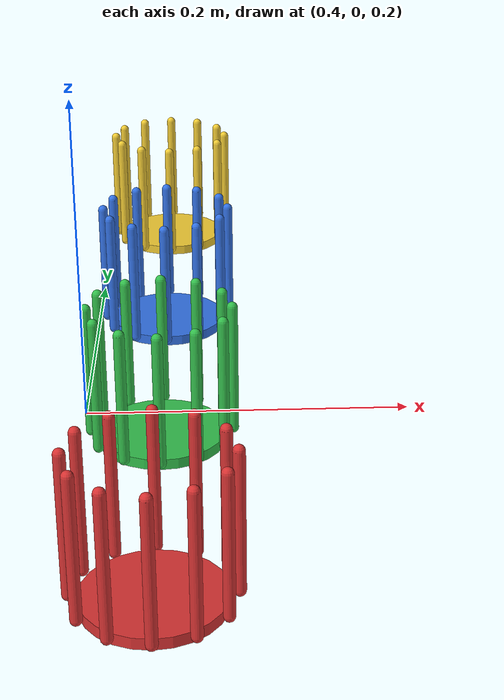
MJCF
<mujoco model="simple_stack_cups">
  <default>
    <default class="stack_cup_collision">
      <geom
        contype="1"
        conaffinity="1"
        condim="4"
        friction="1.5 0.05 0.005"
        solref="0.005 1"
        solimp="0.95 0.995 0.0005 0.5 2"
        margin="0.001"
        gap="0"/>
    </default>
  </default>

  <asset>
    <material name="stack_cup_red" rgba="0.85 0.20 0.20 1"/>
    <material name="stack_cup_green" rgba="0.20 0.75 0.30 1"/>
    <material name="stack_cup_blue" rgba="0.20 0.45 0.90 1"/>
    <material name="stack_cup_yellow" rgba="0.95 0.80 0.20 1"/>
  </asset>

  <worldbody>
    <body name="cup1" pos="0.45 -0.24 0.225">
      <freejoint name="cup1_free"/>
      <inertial pos="0 0 0.04" mass="0.08" diaginertia="0.00008 0.00008 0.00008"/>
      <geom name="cup1_bottom" type="cylinder" pos="0 0 0.003" size="0.036 0.003" material="stack_cup_red" class="stack_cup_collision"/>
      <geom name="cup1_wall_00" type="capsule" pos="0.04000 0.00000 0.043" size="0.003 0.037" material="stack_cup_red" class="stack_cup_collision"/>
      <geom name="cup1_wall_01" type="capsule" pos="0.03464 0.02000 0.043" size="0.003 0.037" material="stack_cup_red" class="stack_cup_collision"/>
      <geom name="cup1_wall_02" type="capsule" pos="0.02000 0.03464 0.043" size="0.003 0.037" material="stack_cup_red" class="stack_cup_collision"/>
      <geom name="cup1_wall_03" type="capsule" pos="0.00000 0.04000 0.043" size="0.003 0.037" material="stack_cup_red" class="stack_cup_collision"/>
      <geom name="cup1_wall_04" type="capsule" pos="-0.02000 0.03464 0.043" size="0.003 0.037" material="stack_cup_red" class="stack_cup_collision"/>
      <geom name="cup1_wall_05" type="capsule" pos="-0.03464 0.02000 0.043" size="0.003 0.037" material="stack_cup_red" class="stack_cup_collision"/>
      <geom name="cup1_wall_06" type="capsule" pos="-0.04000 0.00000 0.043" size="0.003 0.037" material="stack_cup_red" class="stack_cup_collision"/>
      <geom name="cup1_wall_07" type="capsule" pos="-0.03464 -0.02000 0.043" size="0.003 0.037" material="stack_cup_red" class="stack_cup_collision"/>
      <geom name="cup1_wall_08" type="capsule" pos="-0.02000 -0.03464 0.043" size="0.003 0.037" material="stack_cup_red" class="stack_cup_collision"/>
      <geom name="cup1_wall_09" type="capsule" pos="0.00000 -0.04000 0.043" size="0.003 0.037" material="stack_cup_red" class="stack_cup_collision"/>
      <geom name="cup1_wall_10" type="capsule" pos="0.02000 -0.03464 0.043" size="0.003 0.037" material="stack_cup_red" class="stack_cup_collision"/>
      <geom name="cup1_wall_11" type="capsule" pos="0.03464 -0.02000 0.043" size="0.003 0.037" material="stack_cup_red" class="stack_cup_collision"/>
    </body>

    <body name="cup2" pos="0.45 -0.08 0.225">
      <freejoint name="cup2_free"/>
      <inertial pos="0 0 0.04" mass="0.08" diaginertia="0.00008 0.00008 0.00008"/>
      <geom name="cup2_bottom" type="cylinder" pos="0 0 0.003" size="0.036 0.003" material="stack_cup_green" class="stack_cup_collision"/>
      <geom name="cup2_wall_00" type="capsule" pos="0.04000 0.00000 0.043" size="0.003 0.037" material="stack_cup_green" class="stack_cup_collision"/>
      <geom name="cup2_wall_01" type="capsule" pos="0.03464 0.02000 0.043" size="0.003 0.037" material="stack_cup_green" class="stack_cup_collision"/>
      <geom name="cup2_wall_02" type="capsule" pos="0.02000 0.03464 0.043" size="0.003 0.037" material="stack_cup_green" class="stack_cup_collision"/>
      <geom name="cup2_wall_03" type="capsule" pos="0.00000 0.04000 0.043" size="0.003 0.037" material="stack_cup_green" class="stack_cup_collision"/>
      <geom name="cup2_wall_04" type="capsule" pos="-0.02000 0.03464 0.043" size="0.003 0.037" material="stack_cup_green" class="stack_cup_collision"/>
      <geom name="cup2_wall_05" type="capsule" pos="-0.03464 0.02000 0.043" size="0.003 0.037" material="stack_cup_green" class="stack_cup_collision"/>
      <geom name="cup2_wall_06" type="capsule" pos="-0.04000 0.00000 0.043" size="0.003 0.037" material="stack_cup_green" class="stack_cup_collision"/>
      <geom name="cup2_wall_07" type="capsule" pos="-0.03464 -0.02000 0.043" size="0.003 0.037" material="stack_cup_green" class="stack_cup_collision"/>
      <geom name="cup2_wall_08" type="capsule" pos="-0.02000 -0.03464 0.043" size="0.003 0.037" material="stack_cup_green" class="stack_cup_collision"/>
      <geom name="cup2_wall_09" type="capsule" pos="0.00000 -0.04000 0.043" size="0.003 0.037" material="stack_cup_green" class="stack_cup_collision"/>
      <geom name="cup2_wall_10" type="capsule" pos="0.02000 -0.03464 0.043" size="0.003 0.037" material="stack_cup_green" class="stack_cup_collision"/>
      <geom name="cup2_wall_11" type="capsule" pos="0.03464 -0.02000 0.043" size="0.003 0.037" material="stack_cup_green" class="stack_cup_collision"/>
    </body>

    <body name="cup3" pos="0.45 0.08 0.225">
      <freejoint name="cup3_free"/>
      <inertial pos="0 0 0.04" mass="0.08" diaginertia="0.00008 0.00008 0.00008"/>
      <geom name="cup3_bottom" type="cylinder" pos="0 0 0.003" size="0.036 0.003" material="stack_cup_blue" class="stack_cup_collision"/>
      <geom name="cup3_wall_00" type="capsule" pos="0.04000 0.00000 0.043" size="0.003 0.037" material="stack_cup_blue" class="stack_cup_collision"/>
      <geom name="cup3_wall_01" type="capsule" pos="0.03464 0.02000 0.043" size="0.003 0.037" material="stack_cup_blue" class="stack_cup_collision"/>
      <geom name="cup3_wall_02" type="capsule" pos="0.02000 0.03464 0.043" size="0.003 0.037" material="stack_cup_blue" class="stack_cup_collision"/>
      <geom name="cup3_wall_03" type="capsule" pos="0.00000 0.04000 0.043" size="0.003 0.037" material="stack_cup_blue" class="stack_cup_collision"/>
      <geom name="cup3_wall_04" type="capsule" pos="-0.02000 0.03464 0.043" size="0.003 0.037" material="stack_cup_blue" class="stack_cup_collision"/>
      <geom name="cup3_wall_05" type="capsule" pos="-0.03464 0.02000 0.043" size="0.003 0.037" material="stack_cup_blue" class="stack_cup_collision"/>
      <geom name="cup3_wall_06" type="capsule" pos="-0.04000 0.00000 0.043" size="0.003 0.037" material="stack_cup_blue" class="stack_cup_collision"/>
      <geom name="cup3_wall_07" type="capsule" pos="-0.03464 -0.02000 0.043" size="0.003 0.037" material="stack_cup_blue" class="stack_cup_collision"/>
      <geom name="cup3_wall_08" type="capsule" pos="-0.02000 -0.03464 0.043" size="0.003 0.037" material="stack_cup_blue" class="stack_cup_collision"/>
      <geom name="cup3_wall_09" type="capsule" pos="0.00000 -0.04000 0.043" size="0.003 0.037" material="stack_cup_blue" class="stack_cup_collision"/>
      <geom name="cup3_wall_10" type="capsule" pos="0.02000 -0.03464 0.043" size="0.003 0.037" material="stack_cup_blue" class="stack_cup_collision"/>
      <geom name="cup3_wall_11" type="capsule" pos="0.03464 -0.02000 0.043" size="0.003 0.037" material="stack_cup_blue" class="stack_cup_collision"/>
    </body>

    <body name="cup4" pos="0.45 0.24 0.225">
      <freejoint name="cup4_free"/>
      <inertial pos="0 0 0.04" mass="0.08" diaginertia="0.00008 0.00008 0.00008"/>
      <geom name="cup4_bottom" type="cylinder" pos="0 0 0.003" size="0.036 0.003" material="stack_cup_yellow" class="stack_cup_collision"/>
      <geom name="cup4_wall_00" type="capsule" pos="0.04000 0.00000 0.043" size="0.003 0.037" material="stack_cup_yellow" class="stack_cup_collision"/>
      <geom name="cup4_wall_01" type="capsule" pos="0.03464 0.02000 0.043" size="0.003 0.037" material="stack_cup_yellow" class="stack_cup_collision"/>
      <geom name="cup4_wall_02" type="capsule" pos="0.02000 0.03464 0.043" size="0.003 0.037" material="stack_cup_yellow" class="stack_cup_collision"/>
      <geom name="cup4_wall_03" type="capsule" pos="0.00000 0.04000 0.043" size="0.003 0.037" material="stack_cup_yellow" class="stack_cup_collision"/>
      <geom name="cup4_wall_04" type="capsule" pos="-0.02000 0.03464 0.043" size="0.003 0.037" material="stack_cup_yellow" class="stack_cup_collision"/>
      <geom name="cup4_wall_05" type="capsule" pos="-0.03464 0.02000 0.043" size="0.003 0.037" material="stack_cup_yellow" class="stack_cup_collision"/>
      <geom name="cup4_wall_06" type="capsule" pos="-0.04000 0.00000 0.043" size="0.003 0.037" material="stack_cup_yellow" class="stack_cup_collision"/>
      <geom name="cup4_wall_07" type="capsule" pos="-0.03464 -0.02000 0.043" size="0.003 0.037" material="stack_cup_yellow" class="stack_cup_collision"/>
      <geom name="cup4_wall_08" type="capsule" pos="-0.02000 -0.03464 0.043" size="0.003 0.037" material="stack_cup_yellow" class="stack_cup_collision"/>
      <geom name="cup4_wall_09" type="capsule" pos="0.00000 -0.04000 0.043" size="0.003 0.037" material="stack_cup_yellow" class="stack_cup_collision"/>
      <geom name="cup4_wall_10" type="capsule" pos="0.02000 -0.03464 0.043" size="0.003 0.037" material="stack_cup_yellow" class="stack_cup_collision"/>
      <geom name="cup4_wall_11" type="capsule" pos="0.03464 -0.02000 0.043" size="0.003 0.037" material="stack_cup_yellow" class="stack_cup_collision"/>
    </body>
  </worldbody>
</mujoco>
